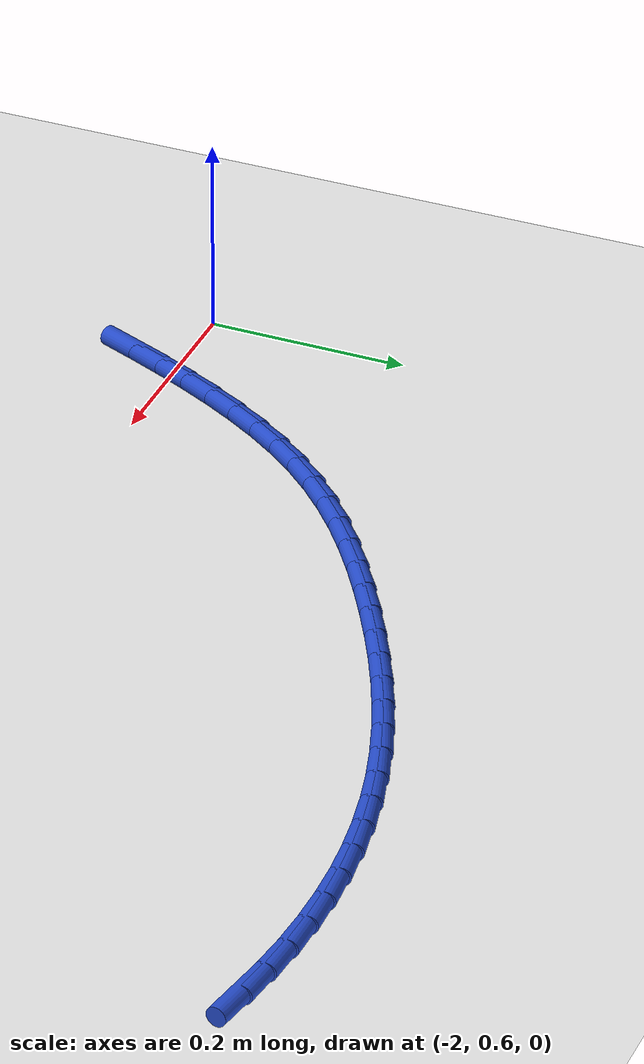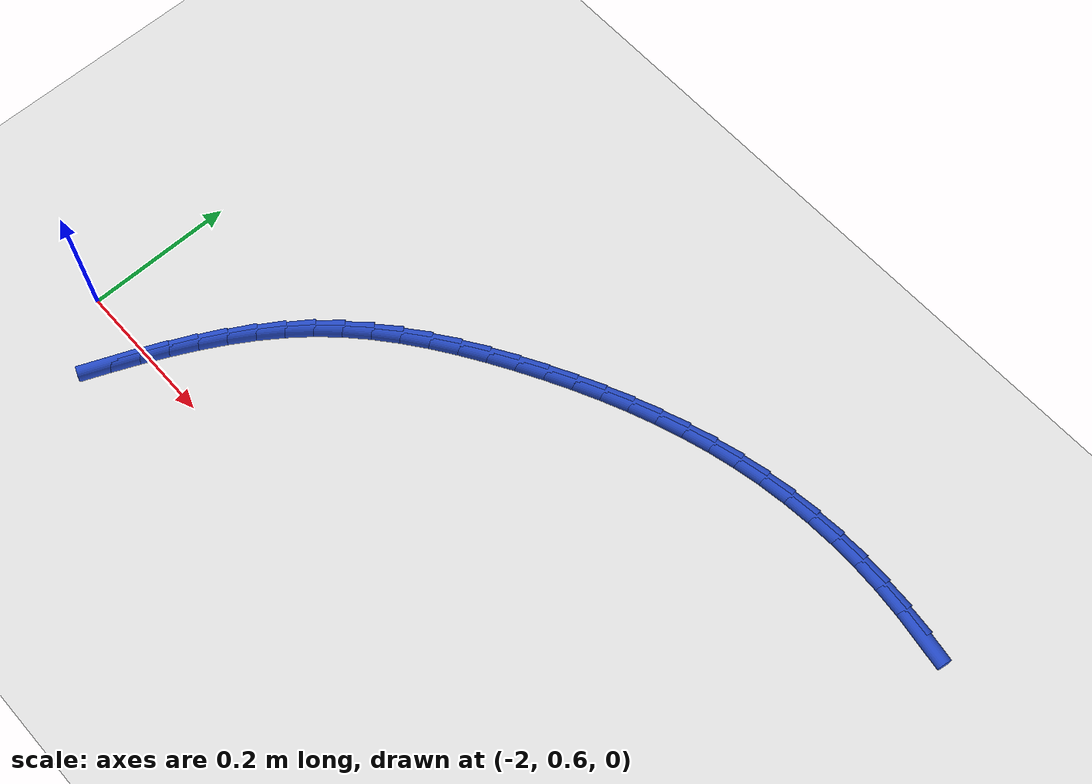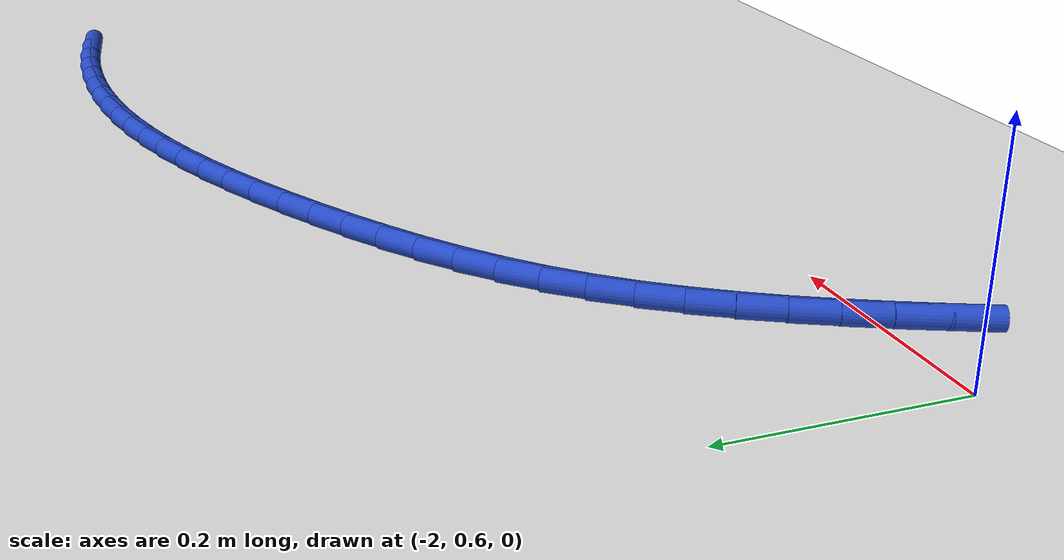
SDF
<sdf version="1.6">
 <world name="default">
  <model name="ground_plane">
   <static>1</static>
   <link name="link">
    <collision name="collision">
     <geometry><plane><normal>0 0 1</normal><size>100 100</size></plane></geometry>
     <surface><friction><ode><mu>100</mu><mu2>50</mu2></ode></friction></surface>
    </collision>
    <visual name="visual">
     <cast_shadows>0</cast_shadows>
     <geometry><plane><normal>0 0 1</normal><size>100 100</size></plane></geometry>
     <material>
      <script><uri>file://media/materials/scripts/gazebo.material</uri><name>Gazebo/WhiteGlow</name></script>
     </material>
    </visual>
   </link>
  </model>
  <model name="line">
   <link name="link_42">
    <pose>-0.9965030360026497 1.0535042750882866 0.01 0 1.57 -0.1669655454936474</pose>
    <collision name="collision">
     <geometry><cylinder><radius>0.01</radius><length>0.08</length></cylinder></geometry>
    </collision>
    <visual name="visual">
     <material>
      <script><name>Gazebo/Blue</name><uri>file://media/materials/scripts/gazebo.material</uri></script>
     </material>
     <geometry><cylinder><radius>0.01</radius><length>0.08</length></cylinder></geometry>
    </visual>
   </link>
   <link name="link_43">
    <pose>-1.033739368883642 1.0597798844753046 0.01 0 1.57 -0.11475387068568024</pose>
    <collision name="collision">
     <geometry><cylinder><radius>0.01</radius><length>0.08</length></cylinder></geometry>
    </collision>
    <visual name="visual">
     <material>
      <script><name>Gazebo/Blue</name><uri>file://media/materials/scripts/gazebo.material</uri></script>
     </material>
     <geometry><cylinder><radius>0.01</radius><length>0.08</length></cylinder></geometry>
    </visual>
   </link>
   <link name="link_44">
    <pose>-1.0713518348197342 1.0641151066409722 0.01 0 1.57 -0.06339842151146845</pose>
    <collision name="collision">
     <geometry><cylinder><radius>0.01</radius><length>0.08</length></cylinder></geometry>
    </collision>
    <visual name="visual">
     <material>
      <script><name>Gazebo/Blue</name><uri>file://media/materials/scripts/gazebo.material</uri></script>
     </material>
     <geometry><cylinder><radius>0.01</radius><length>0.08</length></cylinder></geometry>
    </visual>
   </link>
   <link name="link_45">
    <pose>-1.10919445315487 1.066517488451077 0.01 0 1.57 -0.01257852714526064</pose>
    <collision name="collision">
     <geometry><cylinder><radius>0.01</radius><length>0.08</length></cylinder></geometry>
    </collision>
    <visual name="visual">
     <material>
      <script><name>Gazebo/Blue</name><uri>file://media/materials/scripts/gazebo.material</uri></script>
     </material>
     <geometry><cylinder><radius>0.01</radius><length>0.08</length></cylinder></geometry>
    </visual>
   </link>
   <link name="link_46">
    <pose>-1.1471212432329934 1.0669945767714066 0.01 0 1.57 0.038028904285957274</pose>
    <collision name="collision">
     <geometry><cylinder><radius>0.01</radius><length>0.08</length></cylinder></geometry>
    </collision>
    <visual name="visual">
     <material>
      <script><name>Gazebo/Blue</name><uri>file://media/materials/scripts/gazebo.material</uri></script>
     </material>
     <geometry><cylinder><radius>0.01</radius><length>0.08</length></cylinder></geometry>
    </visual>
   </link>
   <link name="link_47">
    <pose>-1.1849862243980473 1.0655539184677487 0.01 0 1.57 0.08874947000964806</pose>
    <collision name="collision">
     <geometry><cylinder><radius>0.01</radius><length>0.08</length></cylinder></geometry>
    </collision>
    <visual name="visual">
     <material>
      <script><name>Gazebo/Blue</name><uri>file://media/materials/scripts/gazebo.material</uri></script>
     </material>
     <geometry><cylinder><radius>0.01</radius><length>0.08</length></cylinder></geometry>
    </visual>
   </link>
   <link name="link_48">
    <pose>-1.2226434159939759 1.0622030604058907 0.01 0 1.57 0.13991173649598637</pose>
    <collision name="collision">
     <geometry><cylinder><radius>0.01</radius><length>0.08</length></cylinder></geometry>
    </collision>
    <visual name="visual">
     <material>
      <script><name>Gazebo/Blue</name><uri>file://media/materials/scripts/gazebo.material</uri></script>
     </material>
     <geometry><cylinder><radius>0.01</radius><length>0.08</length></cylinder></geometry>
    </visual>
   </link>
   <link name="link_49">
    <pose>-1.259946837364723 1.05694954945162 0.01 0 1.57 0.19160862552969146</pose>
    <collision name="collision">
     <geometry><cylinder><radius>0.01</radius><length>0.08</length></cylinder></geometry>
    </collision>
    <visual name="visual">
     <material>
      <script><name>Gazebo/Blue</name><uri>file://media/materials/scripts/gazebo.material</uri></script>
     </material>
     <geometry><cylinder><radius>0.01</radius><length>0.08</length></cylinder></geometry>
    </visual>
   </link>
   <link name="link_50">
    <pose>-1.2967610806865706 1.0498080103893568 0.01 0 1.57 0.2417445357180875</pose>
    <collision name="collision">
     <geometry><cylinder><radius>0.01</radius><length>0.08</length></cylinder></geometry>
    </collision>
    <visual name="visual">
     <material>
      <script><name>Gazebo/Blue</name><uri>file://media/materials/scripts/gazebo.material</uri></script>
     </material>
     <geometry><cylinder><radius>0.01</radius><length>0.08</length></cylinder></geometry>
    </visual>
   </link>
   <link name="link_51">
    <pose>-1.3330509390412166 1.0408601468933316 0.01 0 1.57 0.2888864077812815</pose>
    <collision name="collision">
     <geometry><cylinder><radius>0.01</radius><length>0.08</length></cylinder></geometry>
    </collision>
    <visual name="visual">
     <material>
      <script><name>Gazebo/Blue</name><uri>file://media/materials/scripts/gazebo.material</uri></script>
     </material>
     <geometry><cylinder><radius>0.01</radius><length>0.08</length></cylinder></geometry>
    </visual>
   </link>
   <link name="link_52">
    <pose>-1.3688364829812933 1.0302246678062046 0.01 0 1.57 0.3328424665663333</pose>
    <collision name="collision">
     <geometry><cylinder><radius>0.01</radius><length>0.08</length></cylinder></geometry>
    </collision>
    <visual name="visual">
     <material>
      <script><name>Gazebo/Blue</name><uri>file://media/materials/scripts/gazebo.material</uri></script>
     </material>
     <geometry><cylinder><radius>0.01</radius><length>0.08</length></cylinder></geometry>
    </visual>
   </link>
   <link name="link_53">
    <pose>-1.4041383621164452 1.0180206696168501 0.01 0 1.57 0.37350591709621866</pose>
    <collision name="collision">
     <geometry><cylinder><radius>0.01</radius><length>0.08</length></cylinder></geometry>
    </collision>
    <visual name="visual">
     <material>
      <script><name>Gazebo/Blue</name><uri>file://media/materials/scripts/gazebo.material</uri></script>
     </material>
     <geometry><cylinder><radius>0.01</radius><length>0.08</length></cylinder></geometry>
    </visual>
   </link>
   <link name="link_54">
    <pose>-1.438977226056319 1.0043672488141435 0.01 0 1.57 0.4108300248535458</pose>
    <collision name="collision">
     <geometry><cylinder><radius>0.01</radius><length>0.08</length></cylinder></geometry>
    </collision>
    <visual name="visual">
     <material>
      <script><name>Gazebo/Blue</name><uri>file://media/materials/scripts/gazebo.material</uri></script>
     </material>
     <geometry><cylinder><radius>0.01</radius><length>0.08</length></cylinder></geometry>
    </visual>
   </link>
   <link name="link_55">
    <pose>-1.4733737244105596 0.9893835018869583 0.01 0 1.57 0.4448152300290857</pose>
    <collision name="collision">
     <geometry><cylinder><radius>0.01</radius><length>0.08</length></cylinder></geometry>
    </collision>
    <visual name="visual">
     <material>
      <script><name>Gazebo/Blue</name><uri>file://media/materials/scripts/gazebo.material</uri></script>
     </material>
     <geometry><cylinder><radius>0.01</radius><length>0.08</length></cylinder></geometry>
    </visual>
   </link>
   <link name="link_56">
    <pose>-1.5073485067888133 0.9731885253241701 0.01 0 1.57 0.4754965106915483</pose>
    <collision name="collision">
     <geometry><cylinder><radius>0.01</radius><length>0.08</length></cylinder></geometry>
    </collision>
    <visual name="visual">
     <material>
      <script><name>Gazebo/Blue</name><uri>file://media/materials/scripts/gazebo.material</uri></script>
     </material>
     <geometry><cylinder><radius>0.01</radius><length>0.08</length></cylinder></geometry>
    </visual>
   </link>
   <link name="link_57">
    <pose>-1.5409222228007253 0.955901415614653 0.01 0 1.57 0.5029320900702529</pose>
    <collision name="collision">
     <geometry><cylinder><radius>0.01</radius><length>0.08</length></cylinder></geometry>
    </collision>
    <visual name="visual">
     <material>
      <script><name>Gazebo/Blue</name><uri>file://media/materials/scripts/gazebo.material</uri></script>
     </material>
     <geometry><cylinder><radius>0.01</radius><length>0.08</length></cylinder></geometry>
    </visual>
   </link>
   <link name="link_58">
    <pose>-1.574115514060031 0.9376412626100581 0.01 0 1.57 0.5289835280030678</pose>
    <collision name="collision">
     <geometry><cylinder><radius>0.01</radius><length>0.08</length></cylinder></geometry>
    </collision>
    <visual name="visual">
     <material>
      <script><name>Gazebo/Blue</name><uri>file://media/materials/scripts/gazebo.material</uri></script>
     </material>
     <geometry><cylinder><radius>0.01</radius><length>0.08</length></cylinder></geometry>
    </visual>
   </link>
   <link name="link_59">
    <pose>-1.6068933189064762 0.9184809181435972 0.01 0 1.57 0.5598958145214069</pose>
    <collision name="collision">
     <geometry><cylinder><radius>0.01</radius><length>0.08</length></cylinder></geometry>
    </collision>
    <visual name="visual">
     <material>
      <script><name>Gazebo/Blue</name><uri>file://media/materials/scripts/gazebo.material</uri></script>
     </material>
     <geometry><cylinder><radius>0.01</radius><length>0.08</length></cylinder></geometry>
    </visual>
   </link>
   <link name="link_60">
    <pose>-1.639031690788359 0.8983364450041663 0.01 0 1.57 0.5973067775721952</pose>
    <collision name="collision">
     <geometry><cylinder><radius>0.01</radius><length>0.08</length></cylinder></geometry>
    </collision>
    <visual name="visual">
     <material>
      <script><name>Gazebo/Blue</name><uri>file://media/materials/scripts/gazebo.material</uri></script>
     </material>
     <geometry><cylinder><radius>0.01</radius><length>0.08</length></cylinder></geometry>
    </visual>
   </link>
   <link name="link_61">
    <pose>-1.6702666852549124 0.8770907046360723 0.01 0 1.57 0.6416550732925821</pose>
    <collision name="collision">
     <geometry><cylinder><radius>0.01</radius><length>0.08</length></cylinder></geometry>
    </collision>
    <visual name="visual">
     <material>
      <script><name>Gazebo/Blue</name><uri>file://media/materials/scripts/gazebo.material</uri></script>
     </material>
     <geometry><cylinder><radius>0.01</radius><length>0.08</length></cylinder></geometry>
    </visual>
   </link>
   <link name="link_62">
    <pose>-1.7003343578553713 0.8546265584836225 0.01 0 1.57 0.6934182419998544</pose>
    <collision name="collision">
     <geometry><cylinder><radius>0.01</radius><length>0.08</length></cylinder></geometry>
    </collision>
    <visual name="visual">
     <material>
      <script><name>Gazebo/Blue</name><uri>file://media/materials/scripts/gazebo.material</uri></script>
     </material>
     <geometry><cylinder><radius>0.01</radius><length>0.08</length></cylinder></geometry>
    </visual>
   </link>
   <link name="link_63">
    <pose>-1.7289707641389715 0.8308268679911243 0.01 0 1.57 0.7530525478042834</pose>
    <collision name="collision">
     <geometry><cylinder><radius>0.01</radius><length>0.08</length></cylinder></geometry>
    </collision>
    <visual name="visual">
     <material>
      <script><name>Gazebo/Blue</name><uri>file://media/materials/scripts/gazebo.material</uri></script>
     </material>
     <geometry><cylinder><radius>0.01</radius><length>0.08</length></cylinder></geometry>
    </visual>
   </link>
   <link name="link_64">
    <pose>-1.7559119596549455 0.8055744946028849 0.01 0 1.57 0.8206316478421547</pose>
    <collision name="collision">
     <geometry><cylinder><radius>0.01</radius><length>0.08</length></cylinder></geometry>
    </collision>
    <visual name="visual">
     <material>
      <script><name>Gazebo/Blue</name><uri>file://media/materials/scripts/gazebo.material</uri></script>
     </material>
     <geometry><cylinder><radius>0.01</radius><length>0.08</length></cylinder></geometry>
    </visual>
   </link>
   <link name="link_65">
    <pose>-1.7809029240471146 0.7787573959099351 0.01 0 1.57 0.889353332523554</pose>
    <collision name="collision">
     <geometry><cylinder><radius>0.01</radius><length>0.08</length></cylinder></geometry>
    </collision>
    <visual name="visual">
     <material>
      <script><name>Gazebo/Blue</name><uri>file://media/materials/scripts/gazebo.material</uri></script>
     </material>
     <geometry><cylinder><radius>0.01</radius><length>0.08</length></cylinder></geometry>
    </visual>
   </link>
   <link name="link_66">
    <pose>-1.8039102538249414 0.7503900848701187 0.01 0 1.57 0.9515178400448981</pose>
    <collision name="collision">
     <geometry><cylinder><radius>0.01</radius><length>0.08</length></cylinder></geometry>
    </collision>
    <visual name="visual">
     <material>
      <script><name>Gazebo/Blue</name><uri>file://media/materials/scripts/gazebo.material</uri></script>
     </material>
     <geometry><cylinder><radius>0.01</radius><length>0.08</length></cylinder></geometry>
    </visual>
   </link>
   <link name="link_67">
    <pose>-1.8251316529232637 0.7206190494374367 0.01 0 1.57 1.006303522386353</pose>
    <collision name="collision">
     <geometry><cylinder><radius>0.01</radius><length>0.08</length></cylinder></geometry>
    </collision>
    <visual name="visual">
     <material>
      <script><name>Gazebo/Blue</name><uri>file://media/materials/scripts/gazebo.material</uri></script>
     </material>
     <geometry><cylinder><radius>0.01</radius><length>0.08</length></cylinder></geometry>
    </visual>
   </link>
   <link name="link_68">
    <pose>-1.8447756485297655 0.6895969582359849 0.01 0 1.57 1.0535165966597948</pose>
    <collision name="collision">
     <geometry><cylinder><radius>0.01</radius><length>0.08</length></cylinder></geometry>
    </collision>
    <visual name="visual">
     <material>
      <script><name>Gazebo/Blue</name><uri>file://media/materials/scripts/gazebo.material</uri></script>
     </material>
     <geometry><cylinder><radius>0.01</radius><length>0.08</length></cylinder></geometry>
    </visual>
   </link>
   <link name="link_69">
    <pose>-1.8630507678321324 0.6574764798898589 0.01 0 1.57 1.093175055149425</pose>
    <collision name="collision">
     <geometry><cylinder><radius>0.01</radius><length>0.08</length></cylinder></geometry>
    </collision>
    <visual name="visual">
     <material>
      <script><name>Gazebo/Blue</name><uri>file://media/materials/scripts/gazebo.material</uri></script>
     </material>
     <geometry><cylinder><radius>0.01</radius><length>0.08</length></cylinder></geometry>
    </visual>
   </link>
   <link name="link_70">
    <pose>-1.8801655380180489 0.6244102830231558 0.01 0 1.57 1.1254266521872383</pose>
    <collision name="collision">
     <geometry><cylinder><radius>0.01</radius><length>0.08</length></cylinder></geometry>
    </collision>
    <visual name="visual">
     <material>
      <script><name>Gazebo/Blue</name><uri>file://media/materials/scripts/gazebo.material</uri></script>
     </material>
     <geometry><cylinder><radius>0.01</radius><length>0.08</length></cylinder></geometry>
    </visual>
   </link>
   <link name="link_71">
    <pose>-1.8963284862751995 0.590551036259971 0.01 0 1.57 1.1504805944874679</pose>
    <collision name="collision">
     <geometry><cylinder><radius>0.01</radius><length>0.08</length></cylinder></geometry>
    </collision>
    <visual name="visual">
     <material>
      <script><name>Gazebo/Blue</name><uri>file://media/materials/scripts/gazebo.material</uri></script>
     </material>
     <geometry><cylinder><radius>0.01</radius><length>0.08</length></cylinder></geometry>
    </visual>
   </link>
   <link name="link_72">
    <pose>-1.9117481397912683 0.5560514082244007 0.01 0 1.57 1.168556158449016</pose>
    <collision name="collision">
     <geometry><cylinder><radius>0.01</radius><length>0.08</length></cylinder></geometry>
    </collision>
    <visual name="visual">
     <material>
      <script><name>Gazebo/Blue</name><uri>file://media/materials/scripts/gazebo.material</uri></script>
     </material>
     <geometry><cylinder><radius>0.01</radius><length>0.08</length></cylinder></geometry>
    </visual>
   </link>
  </model>
 </world>
</sdf>
